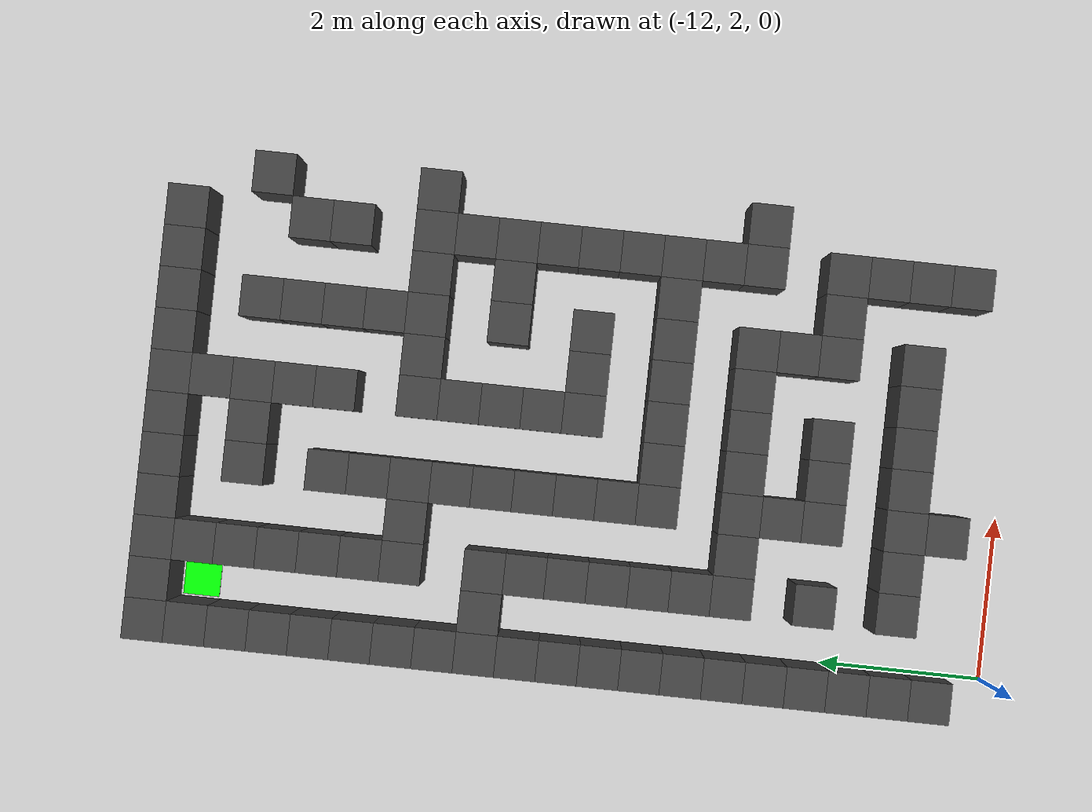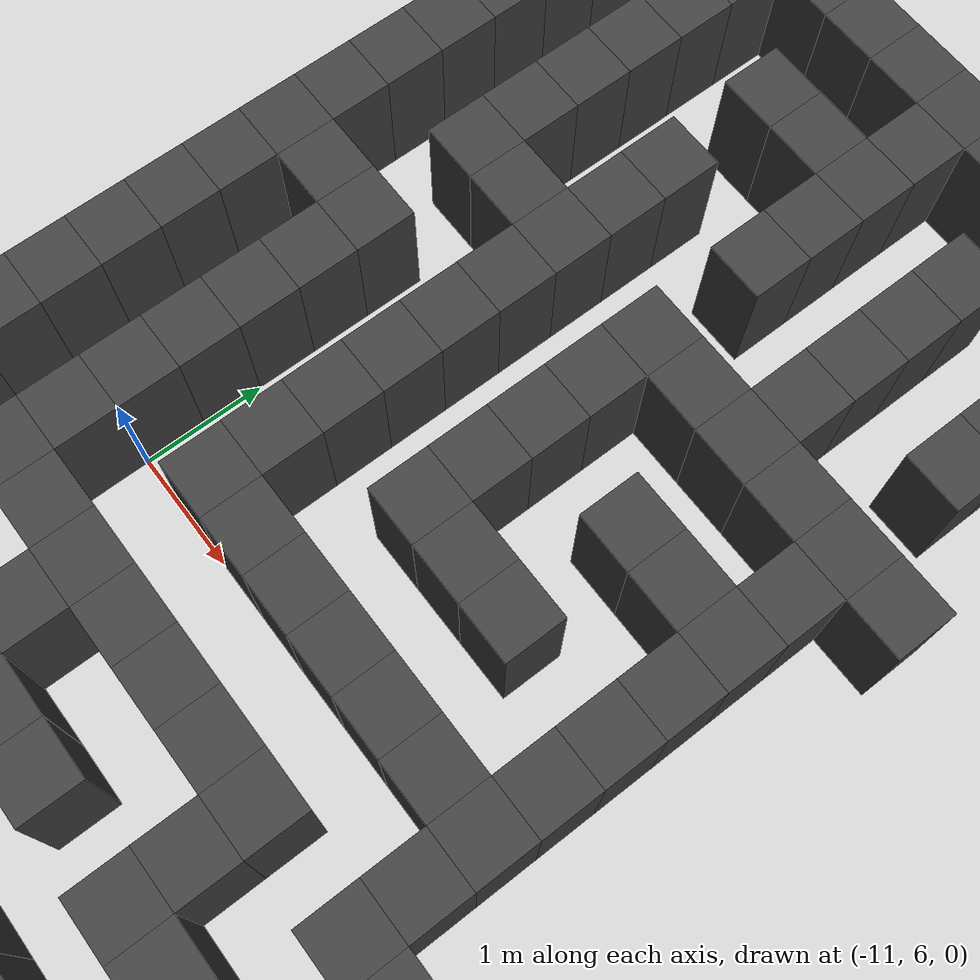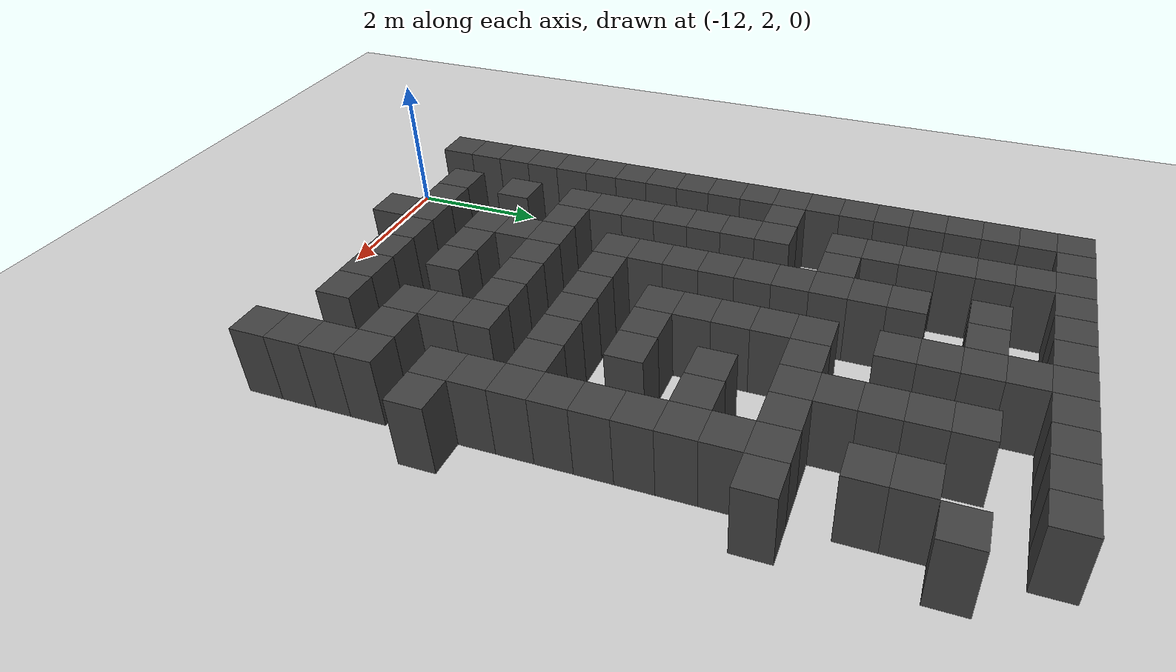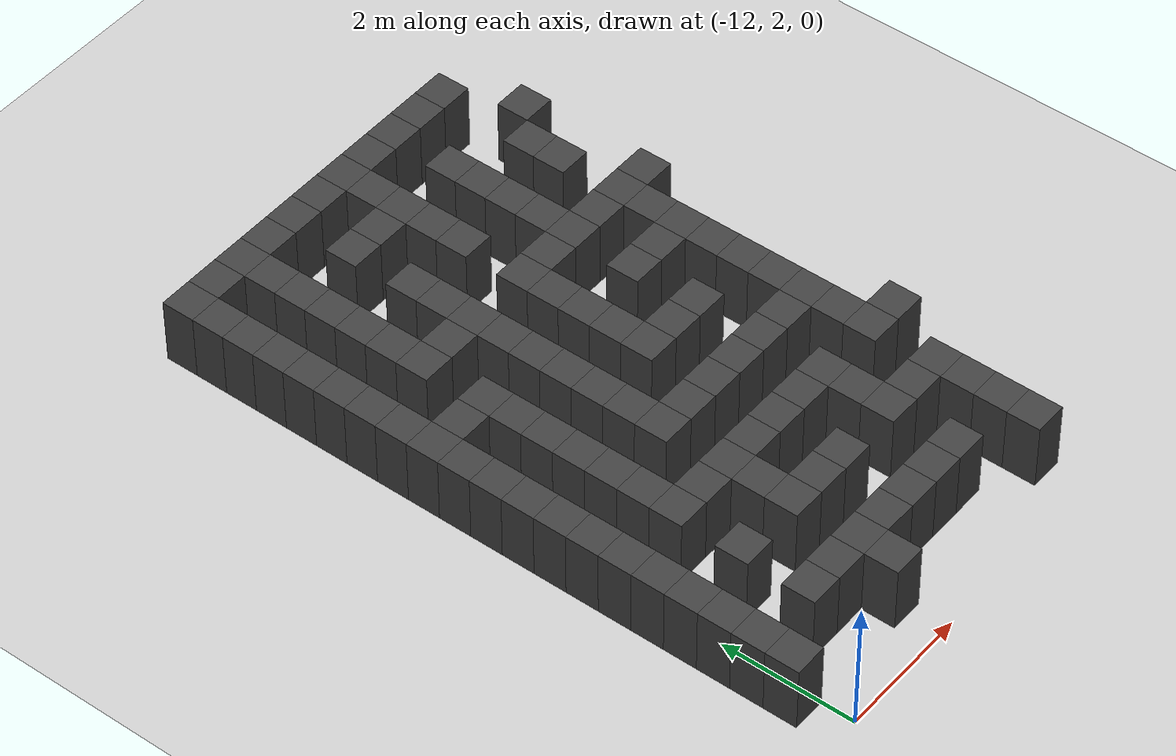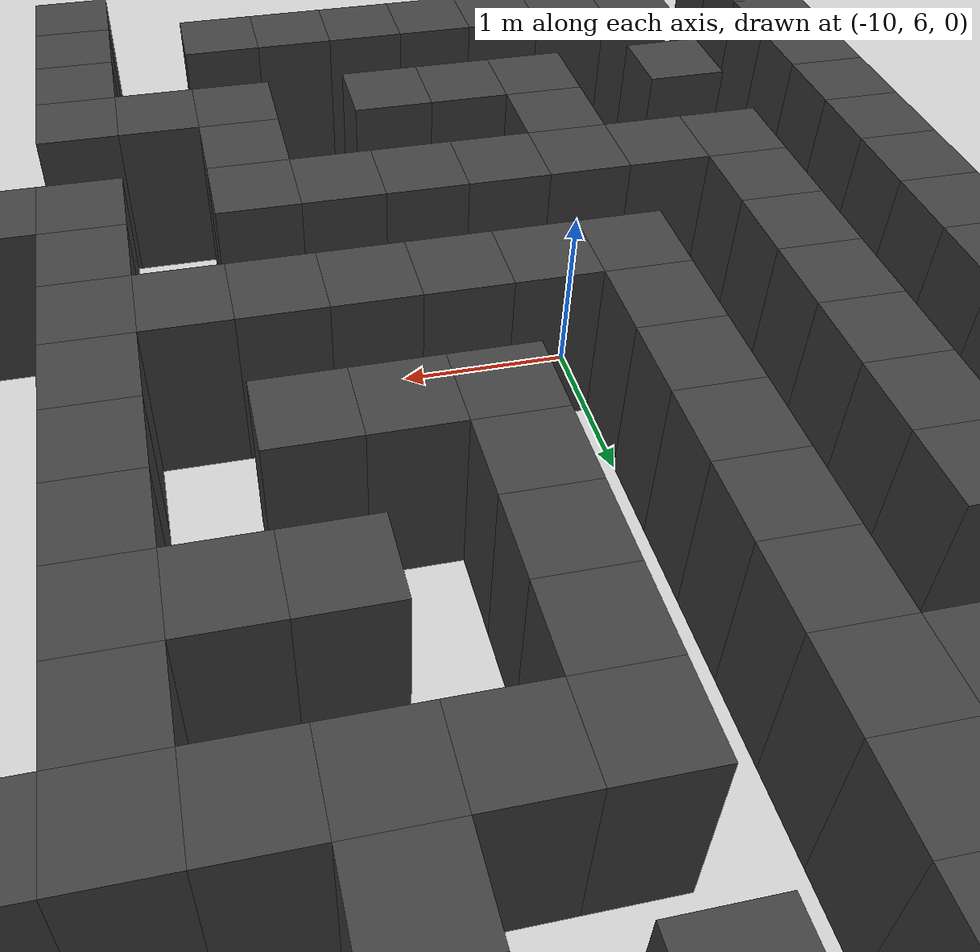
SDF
<sdf version="1.7">
 <world name="map_19815">
  <model name="ground_plane">
   <static>true</static>
   <link name="link">
    <collision name="collision">
     <geometry><plane><normal>0 0 1</normal><size>200 200</size></plane></geometry>
    </collision>
    <visual name="visual">
     <geometry><plane><normal>0 0 1</normal><size>200 200</size></plane></geometry>
     <material><ambient>0.8 0.8 0.8 1</ambient><diffuse>0.8 0.8 0.8 1</diffuse></material>
    </visual>
   </link>
  </model>
  <model name="maze_environment">
   <static>true</static>
   <link name="wall_0">
    <pose>-12.250 12.250 0.500 0 0 0</pose>
    <collision name="col"><geometry><box><size>0.5 0.5 1.0</size></box></geometry></collision>
    <visual name="vis">
     <geometry><box><size>0.5 0.5 1.0</size></box></geometry>
     <material><ambient>0.15 0.15 0.15 1</ambient><diffuse>0.25 0.25 0.25 1</diffuse></material>
    </visual>
   </link>
   <link name="wall_1">
    <pose>-11.750 12.250 0.500 0 0 0</pose>
    <collision name="col"><geometry><box><size>0.5 0.5 1.0</size></box></geometry></collision>
    <visual name="vis">
     <geometry><box><size>0.5 0.5 1.0</size></box></geometry>
     <material><ambient>0.15 0.15 0.15 1</ambient><diffuse>0.25 0.25 0.25 1</diffuse></material>
    </visual>
   </link>
   <link name="wall_2">
    <pose>-11.250 12.250 0.500 0 0 0</pose>
    <collision name="col"><geometry><box><size>0.5 0.5 1.0</size></box></geometry></collision>
    <visual name="vis">
     <geometry><box><size>0.5 0.5 1.0</size></box></geometry>
     <material><ambient>0.15 0.15 0.15 1</ambient><diffuse>0.25 0.25 0.25 1</diffuse></material>
    </visual>
   </link>
   <link name="wall_3">
    <pose>-10.750 12.250 0.500 0 0 0</pose>
    <collision name="col"><geometry><box><size>0.5 0.5 1.0</size></box></geometry></collision>
    <visual name="vis">
     <geometry><box><size>0.5 0.5 1.0</size></box></geometry>
     <material><ambient>0.15 0.15 0.15 1</ambient><diffuse>0.25 0.25 0.25 1</diffuse></material>
    </visual>
   </link>
   <link name="wall_4">
    <pose>-10.250 12.250 0.500 0 0 0</pose>
    <collision name="col"><geometry><box><size>0.5 0.5 1.0</size></box></geometry></collision>
    <visual name="vis">
     <geometry><box><size>0.5 0.5 1.0</size></box></geometry>
     <material><ambient>0.15 0.15 0.15 1</ambient><diffuse>0.25 0.25 0.25 1</diffuse></material>
    </visual>
   </link>
   <link name="wall_5">
    <pose>-9.750 12.250 0.500 0 0 0</pose>
    <collision name="col"><geometry><box><size>0.5 0.5 1.0</size></box></geometry></collision>
    <visual name="vis">
     <geometry><box><size>0.5 0.5 1.0</size></box></geometry>
     <material><ambient>0.15 0.15 0.15 1</ambient><diffuse>0.25 0.25 0.25 1</diffuse></material>
    </visual>
   </link>
   <link name="wall_6">
    <pose>-9.250 12.250 0.500 0 0 0</pose>
    <collision name="col"><geometry><box><size>0.5 0.5 1.0</size></box></geometry></collision>
    <visual name="vis">
     <geometry><box><size>0.5 0.5 1.0</size></box></geometry>
     <material><ambient>0.15 0.15 0.15 1</ambient><diffuse>0.25 0.25 0.25 1</diffuse></material>
    </visual>
   </link>
   <link name="wall_7">
    <pose>-8.750 12.250 0.500 0 0 0</pose>
    <collision name="col"><geometry><box><size>0.5 0.5 1.0</size></box></geometry></collision>
    <visual name="vis">
     <geometry><box><size>0.5 0.5 1.0</size></box></geometry>
     <material><ambient>0.15 0.15 0.15 1</ambient><diffuse>0.25 0.25 0.25 1</diffuse></material>
    </visual>
   </link>
   <link name="wall_8">
    <pose>-8.250 12.250 0.500 0 0 0</pose>
    <collision name="col"><geometry><box><size>0.5 0.5 1.0</size></box></geometry></collision>
    <visual name="vis">
     <geometry><box><size>0.5 0.5 1.0</size></box></geometry>
     <material><ambient>0.15 0.15 0.15 1</ambient><diffuse>0.25 0.25 0.25 1</diffuse></material>
    </visual>
   </link>
   <link name="wall_9">
    <pose>-7.750 12.250 0.500 0 0 0</pose>
    <collision name="col"><geometry><box><size>0.5 0.5 1.0</size></box></geometry></collision>
    <visual name="vis">
     <geometry><box><size>0.5 0.5 1.0</size></box></geometry>
     <material><ambient>0.15 0.15 0.15 1</ambient><diffuse>0.25 0.25 0.25 1</diffuse></material>
    </visual>
   </link>
   <link name="wall_10">
    <pose>-7.250 12.250 0.500 0 0 0</pose>
    <collision name="col"><geometry><box><size>0.5 0.5 1.0</size></box></geometry></collision>
    <visual name="vis">
     <geometry><box><size>0.5 0.5 1.0</size></box></geometry>
     <material><ambient>0.15 0.15 0.15 1</ambient><diffuse>0.25 0.25 0.25 1</diffuse></material>
    </visual>
   </link>
   <link name="wall_50">
    <pose>-12.250 11.750 0.500 0 0 0</pose>
    <collision name="col"><geometry><box><size>0.5 0.5 1.0</size></box></geometry></collision>
    <visual name="vis">
     <geometry><box><size>0.5 0.5 1.0</size></box></geometry>
     <material><ambient>0.15 0.15 0.15 1</ambient><diffuse>0.25 0.25 0.25 1</diffuse></material>
    </visual>
   </link>
   <link name="wall_51">
    <pose>-11.250 11.750 0.500 0 0 0</pose>
    <collision name="col"><geometry><box><size>0.5 0.5 1.0</size></box></geometry></collision>
    <visual name="vis">
     <geometry><box><size>0.5 0.5 1.0</size></box></geometry>
     <material><ambient>0.15 0.15 0.15 1</ambient><diffuse>0.25 0.25 0.25 1</diffuse></material>
    </visual>
   </link>
   <link name="wall_52">
    <pose>-9.250 11.750 0.500 0 0 0</pose>
    <collision name="col"><geometry><box><size>0.5 0.5 1.0</size></box></geometry></collision>
    <visual name="vis">
     <geometry><box><size>0.5 0.5 1.0</size></box></geometry>
     <material><ambient>0.15 0.15 0.15 1</ambient><diffuse>0.25 0.25 0.25 1</diffuse></material>
    </visual>
   </link>
   <link name="wall_60">
    <pose>-12.250 11.250 0.500 0 0 0</pose>
    <collision name="col"><geometry><box><size>0.5 0.5 1.0</size></box></geometry></collision>
    <visual name="vis">
     <geometry><box><size>0.5 0.5 1.0</size></box></geometry>
     <material><ambient>0.15 0.15 0.15 1</ambient><diffuse>0.25 0.25 0.25 1</diffuse></material>
    </visual>
   </link>
   <link name="wall_61">
    <pose>-11.250 11.250 0.500 0 0 0</pose>
    <collision name="col"><geometry><box><size>0.5 0.5 1.0</size></box></geometry></collision>
    <visual name="vis">
     <geometry><box><size>0.5 0.5 1.0</size></box></geometry>
     <material><ambient>0.15 0.15 0.15 1</ambient><diffuse>0.25 0.25 0.25 1</diffuse></material>
    </visual>
   </link>
   <link name="wall_62">
    <pose>-10.250 11.250 0.500 0 0 0</pose>
    <collision name="col"><geometry><box><size>0.5 0.5 1.0</size></box></geometry></collision>
    <visual name="vis">
     <geometry><box><size>0.5 0.5 1.0</size></box></geometry>
     <material><ambient>0.15 0.15 0.15 1</ambient><diffuse>0.25 0.25 0.25 1</diffuse></material>
    </visual>
   </link>
   <link name="wall_63">
    <pose>-9.750 11.250 0.500 0 0 0</pose>
    <collision name="col"><geometry><box><size>0.5 0.5 1.0</size></box></geometry></collision>
    <visual name="vis">
     <geometry><box><size>0.5 0.5 1.0</size></box></geometry>
     <material><ambient>0.15 0.15 0.15 1</ambient><diffuse>0.25 0.25 0.25 1</diffuse></material>
    </visual>
   </link>
   <link name="wall_64">
    <pose>-9.250 11.250 0.500 0 0 0</pose>
    <collision name="col"><geometry><box><size>0.5 0.5 1.0</size></box></geometry></collision>
    <visual name="vis">
     <geometry><box><size>0.5 0.5 1.0</size></box></geometry>
     <material><ambient>0.15 0.15 0.15 1</ambient><diffuse>0.25 0.25 0.25 1</diffuse></material>
    </visual>
   </link>
   <link name="wall_65">
    <pose>-8.250 11.250 0.500 0 0 0</pose>
    <collision name="col"><geometry><box><size>0.5 0.5 1.0</size></box></geometry></collision>
    <visual name="vis">
     <geometry><box><size>0.5 0.5 1.0</size></box></geometry>
     <material><ambient>0.15 0.15 0.15 1</ambient><diffuse>0.25 0.25 0.25 1</diffuse></material>
    </visual>
   </link>
   <link name="wall_66">
    <pose>-6.750 11.250 0.500 0 0 0</pose>
    <collision name="col"><geometry><box><size>0.5 0.5 1.0</size></box></geometry></collision>
    <visual name="vis">
     <geometry><box><size>0.5 0.5 1.0</size></box></geometry>
     <material><ambient>0.15 0.15 0.15 1</ambient><diffuse>0.25 0.25 0.25 1</diffuse></material>
    </visual>
   </link>
   <link name="wall_94">
    <pose>-12.250 10.750 0.500 0 0 0</pose>
    <collision name="col"><geometry><box><size>0.5 0.5 1.0</size></box></geometry></collision>
    <visual name="vis">
     <geometry><box><size>0.5 0.5 1.0</size></box></geometry>
     <material><ambient>0.15 0.15 0.15 1</ambient><diffuse>0.25 0.25 0.25 1</diffuse></material>
    </visual>
   </link>
   <link name="wall_95">
    <pose>-11.250 10.750 0.500 0 0 0</pose>
    <collision name="col"><geometry><box><size>0.5 0.5 1.0</size></box></geometry></collision>
    <visual name="vis">
     <geometry><box><size>0.5 0.5 1.0</size></box></geometry>
     <material><ambient>0.15 0.15 0.15 1</ambient><diffuse>0.25 0.25 0.25 1</diffuse></material>
    </visual>
   </link>
   <link name="wall_96">
    <pose>-9.250 10.750 0.500 0 0 0</pose>
    <collision name="col"><geometry><box><size>0.5 0.5 1.0</size></box></geometry></collision>
    <visual name="vis">
     <geometry><box><size>0.5 0.5 1.0</size></box></geometry>
     <material><ambient>0.15 0.15 0.15 1</ambient><diffuse>0.25 0.25 0.25 1</diffuse></material>
    </visual>
   </link>
   <link name="wall_97">
    <pose>-8.250 10.750 0.500 0 0 0</pose>
    <collision name="col"><geometry><box><size>0.5 0.5 1.0</size></box></geometry></collision>
    <visual name="vis">
     <geometry><box><size>0.5 0.5 1.0</size></box></geometry>
     <material><ambient>0.15 0.15 0.15 1</ambient><diffuse>0.25 0.25 0.25 1</diffuse></material>
    </visual>
   </link>
   <link name="wall_98">
    <pose>-7.250 10.750 0.500 0 0 0</pose>
    <collision name="col"><geometry><box><size>0.5 0.5 1.0</size></box></geometry></collision>
    <visual name="vis">
     <geometry><box><size>0.5 0.5 1.0</size></box></geometry>
     <material><ambient>0.15 0.15 0.15 1</ambient><diffuse>0.25 0.25 0.25 1</diffuse></material>
    </visual>
   </link>
   <link name="wall_111">
    <pose>-12.250 10.250 0.500 0 0 0</pose>
    <collision name="col"><geometry><box><size>0.5 0.5 1.0</size></box></geometry></collision>
    <visual name="vis">
     <geometry><box><size>0.5 0.5 1.0</size></box></geometry>
     <material><ambient>0.15 0.15 0.15 1</ambient><diffuse>0.25 0.25 0.25 1</diffuse></material>
    </visual>
   </link>
   <link name="wall_112">
    <pose>-11.250 10.250 0.500 0 0 0</pose>
    <collision name="col"><geometry><box><size>0.5 0.5 1.0</size></box></geometry></collision>
    <visual name="vis">
     <geometry><box><size>0.5 0.5 1.0</size></box></geometry>
     <material><ambient>0.15 0.15 0.15 1</ambient><diffuse>0.25 0.25 0.25 1</diffuse></material>
    </visual>
   </link>
   <link name="wall_113">
    <pose>-10.250 10.250 0.500 0 0 0</pose>
    <collision name="col"><geometry><box><size>0.5 0.5 1.0</size></box></geometry></collision>
    <visual name="vis">
     <geometry><box><size>0.5 0.5 1.0</size></box></geometry>
     <material><ambient>0.15 0.15 0.15 1</ambient><diffuse>0.25 0.25 0.25 1</diffuse></material>
    </visual>
   </link>
   <link name="wall_114">
    <pose>-9.250 10.250 0.500 0 0 0</pose>
    <collision name="col"><geometry><box><size>0.5 0.5 1.0</size></box></geometry></collision>
    <visual name="vis">
     <geometry><box><size>0.5 0.5 1.0</size></box></geometry>
     <material><ambient>0.15 0.15 0.15 1</ambient><diffuse>0.25 0.25 0.25 1</diffuse></material>
    </visual>
   </link>
   <link name="wall_115">
    <pose>-8.250 10.250 0.500 0 0 0</pose>
    <collision name="col"><geometry><box><size>0.5 0.5 1.0</size></box></geometry></collision>
    <visual name="vis">
     <geometry><box><size>0.5 0.5 1.0</size></box></geometry>
     <material><ambient>0.15 0.15 0.15 1</ambient><diffuse>0.25 0.25 0.25 1</diffuse></material>
    </visual>
   </link>
   <link name="wall_116">
    <pose>-7.250 10.250 0.500 0 0 0</pose>
    <collision name="col"><geometry><box><size>0.5 0.5 1.0</size></box></geometry></collision>
    <visual name="vis">
     <geometry><box><size>0.5 0.5 1.0</size></box></geometry>
     <material><ambient>0.15 0.15 0.15 1</ambient><diffuse>0.25 0.25 0.25 1</diffuse></material>
    </visual>
   </link>
   <link name="wall_146">
    <pose>-12.250 9.750 0.500 0 0 0</pose>
    <collision name="col"><geometry><box><size>0.5 0.5 1.0</size></box></geometry></collision>
    <visual name="vis">
     <geometry><box><size>0.5 0.5 1.0</size></box></geometry>
     <material><ambient>0.15 0.15 0.15 1</ambient><diffuse>0.25 0.25 0.25 1</diffuse></material>
    </visual>
   </link>
   <link name="wall_147">
    <pose>-11.250 9.750 0.500 0 0 0</pose>
    <collision name="col"><geometry><box><size>0.5 0.5 1.0</size></box></geometry></collision>
    <visual name="vis">
     <geometry><box><size>0.5 0.5 1.0</size></box></geometry>
     <material><ambient>0.15 0.15 0.15 1</ambient><diffuse>0.25 0.25 0.25 1</diffuse></material>
    </visual>
   </link>
   <link name="wall_148">
    <pose>-10.250 9.750 0.500 0 0 0</pose>
    <collision name="col"><geometry><box><size>0.5 0.5 1.0</size></box></geometry></collision>
    <visual name="vis">
     <geometry><box><size>0.5 0.5 1.0</size></box></geometry>
     <material><ambient>0.15 0.15 0.15 1</ambient><diffuse>0.25 0.25 0.25 1</diffuse></material>
    </visual>
   </link>
   <link name="wall_149">
    <pose>-8.250 9.750 0.500 0 0 0</pose>
    <collision name="col"><geometry><box><size>0.5 0.5 1.0</size></box></geometry></collision>
    <visual name="vis">
     <geometry><box><size>0.5 0.5 1.0</size></box></geometry>
     <material><ambient>0.15 0.15 0.15 1</ambient><diffuse>0.25 0.25 0.25 1</diffuse></material>
    </visual>
   </link>
   <link name="wall_161">
    <pose>-12.250 9.250 0.500 0 0 0</pose>
    <collision name="col"><geometry><box><size>0.5 0.5 1.0</size></box></geometry></collision>
    <visual name="vis">
     <geometry><box><size>0.5 0.5 1.0</size></box></geometry>
     <material><ambient>0.15 0.15 0.15 1</ambient><diffuse>0.25 0.25 0.25 1</diffuse></material>
    </visual>
   </link>
   <link name="wall_162">
    <pose>-11.250 9.250 0.500 0 0 0</pose>
    <collision name="col"><geometry><box><size>0.5 0.5 1.0</size></box></geometry></collision>
    <visual name="vis">
     <geometry><box><size>0.5 0.5 1.0</size></box></geometry>
     <material><ambient>0.15 0.15 0.15 1</ambient><diffuse>0.25 0.25 0.25 1</diffuse></material>
    </visual>
   </link>
   <link name="wall_163">
    <pose>-10.750 9.250 0.500 0 0 0</pose>
    <collision name="col"><geometry><box><size>0.5 0.5 1.0</size></box></geometry></collision>
    <visual name="vis">
     <geometry><box><size>0.5 0.5 1.0</size></box></geometry>
     <material><ambient>0.15 0.15 0.15 1</ambient><diffuse>0.25 0.25 0.25 1</diffuse></material>
    </visual>
   </link>
   <link name="wall_164">
    <pose>-10.250 9.250 0.500 0 0 0</pose>
    <collision name="col"><geometry><box><size>0.5 0.5 1.0</size></box></geometry></collision>
    <visual name="vis">
     <geometry><box><size>0.5 0.5 1.0</size></box></geometry>
     <material><ambient>0.15 0.15 0.15 1</ambient><diffuse>0.25 0.25 0.25 1</diffuse></material>
    </visual>
   </link>
   <link name="wall_165">
    <pose>-9.250 9.250 0.500 0 0 0</pose>
    <collision name="col"><geometry><box><size>0.5 0.5 1.0</size></box></geometry></collision>
    <visual name="vis">
     <geometry><box><size>0.5 0.5 1.0</size></box></geometry>
     <material><ambient>0.15 0.15 0.15 1</ambient><diffuse>0.25 0.25 0.25 1</diffuse></material>
    </visual>
   </link>
   <link name="wall_166">
    <pose>-8.750 9.250 0.500 0 0 0</pose>
    <collision name="col"><geometry><box><size>0.5 0.5 1.0</size></box></geometry></collision>
    <visual name="vis">
     <geometry><box><size>0.5 0.5 1.0</size></box></geometry>
     <material><ambient>0.15 0.15 0.15 1</ambient><diffuse>0.25 0.25 0.25 1</diffuse></material>
    </visual>
   </link>
   <link name="wall_167">
    <pose>-8.250 9.250 0.500 0 0 0</pose>
    <collision name="col"><geometry><box><size>0.5 0.5 1.0</size></box></geometry></collision>
    <visual name="vis">
     <geometry><box><size>0.5 0.5 1.0</size></box></geometry>
     <material><ambient>0.15 0.15 0.15 1</ambient><diffuse>0.25 0.25 0.25 1</diffuse></material>
    </visual>
   </link>
   <link name="wall_168">
    <pose>-7.750 9.250 0.500 0 0 0</pose>
    <collision name="col"><geometry><box><size>0.5 0.5 1.0</size></box></geometry></collision>
    <visual name="vis">
     <geometry><box><size>0.5 0.5 1.0</size></box></geometry>
     <material><ambient>0.15 0.15 0.15 1</ambient><diffuse>0.25 0.25 0.25 1</diffuse></material>
    </visual>
   </link>
   <link name="wall_169">
    <pose>-7.250 9.250 0.500 0 0 0</pose>
    <collision name="col"><geometry><box><size>0.5 0.5 1.0</size></box></geometry></collision>
    <visual name="vis">
     <geometry><box><size>0.5 0.5 1.0</size></box></geometry>
     <material><ambient>0.15 0.15 0.15 1</ambient><diffuse>0.25 0.25 0.25 1</diffuse></material>
    </visual>
   </link>
   <link name="wall_170">
    <pose>-6.750 9.250 0.500 0 0 0</pose>
    <collision name="col"><geometry><box><size>0.5 0.5 1.0</size></box></geometry></collision>
    <visual name="vis">
     <geometry><box><size>0.5 0.5 1.0</size></box></geometry>
     <material><ambient>0.15 0.15 0.15 1</ambient><diffuse>0.25 0.25 0.25 1</diffuse></material>
    </visual>
   </link>
   <link name="wall_200">
    <pose>-12.250 8.750 0.500 0 0 0</pose>
    <collision name="col"><geometry><box><size>0.5 0.5 1.0</size></box></geometry></collision>
    <visual name="vis">
     <geometry><box><size>0.5 0.5 1.0</size></box></geometry>
     <material><ambient>0.15 0.15 0.15 1</ambient><diffuse>0.25 0.25 0.25 1</diffuse></material>
    </visual>
   </link>
   <link name="wall_201">
    <pose>-10.250 8.750 0.500 0 0 0</pose>
    <collision name="col"><geometry><box><size>0.5 0.5 1.0</size></box></geometry></collision>
    <visual name="vis">
     <geometry><box><size>0.5 0.5 1.0</size></box></geometry>
     <material><ambient>0.15 0.15 0.15 1</ambient><diffuse>0.25 0.25 0.25 1</diffuse></material>
    </visual>
   </link>
   <link name="wall_202">
    <pose>-9.250 8.750 0.500 0 0 0</pose>
    <collision name="col"><geometry><box><size>0.5 0.5 1.0</size></box></geometry></collision>
    <visual name="vis">
     <geometry><box><size>0.5 0.5 1.0</size></box></geometry>
     <material><ambient>0.15 0.15 0.15 1</ambient><diffuse>0.25 0.25 0.25 1</diffuse></material>
    </visual>
   </link>
   <link name="wall_203">
    <pose>-7.250 8.750 0.500 0 0 0</pose>
    <collision name="col"><geometry><box><size>0.5 0.5 1.0</size></box></geometry></collision>
    <visual name="vis">
     <geometry><box><size>0.5 0.5 1.0</size></box></geometry>
     <material><ambient>0.15 0.15 0.15 1</ambient><diffuse>0.25 0.25 0.25 1</diffuse></material>
    </visual>
   </link>
   <link name="wall_217">
    <pose>-12.250 8.250 0.500 0 0 0</pose>
    <collision name="col"><geometry><box><size>0.5 0.5 1.0</size></box></geometry></collision>
    <visual name="vis">
     <geometry><box><size>0.5 0.5 1.0</size></box></geometry>
     <material><ambient>0.15 0.15 0.15 1</ambient><diffuse>0.25 0.25 0.25 1</diffuse></material>
    </visual>
   </link>
   <link name="wall_218">
    <pose>-11.750 8.250 0.500 0 0 0</pose>
    <collision name="col"><geometry><box><size>0.5 0.5 1.0</size></box></geometry></collision>
    <visual name="vis">
     <geometry><box><size>0.5 0.5 1.0</size></box></geometry>
     <material><ambient>0.15 0.15 0.15 1</ambient><diffuse>0.25 0.25 0.25 1</diffuse></material>
    </visual>
   </link>
   <link name="wall_219">
    <pose>-11.250 8.250 0.500 0 0 0</pose>
    <collision name="col"><geometry><box><size>0.5 0.5 1.0</size></box></geometry></collision>
    <visual name="vis">
     <geometry><box><size>0.5 0.5 1.0</size></box></geometry>
     <material><ambient>0.15 0.15 0.15 1</ambient><diffuse>0.25 0.25 0.25 1</diffuse></material>
    </visual>
   </link>
   <link name="wall_220">
    <pose>-10.250 8.250 0.500 0 0 0</pose>
    <collision name="col"><geometry><box><size>0.5 0.5 1.0</size></box></geometry></collision>
    <visual name="vis">
     <geometry><box><size>0.5 0.5 1.0</size></box></geometry>
     <material><ambient>0.15 0.15 0.15 1</ambient><diffuse>0.25 0.25 0.25 1</diffuse></material>
    </visual>
   </link>
   <link name="wall_221">
    <pose>-9.250 8.250 0.500 0 0 0</pose>
    <collision name="col"><geometry><box><size>0.5 0.5 1.0</size></box></geometry></collision>
    <visual name="vis">
     <geometry><box><size>0.5 0.5 1.0</size></box></geometry>
     <material><ambient>0.15 0.15 0.15 1</ambient><diffuse>0.25 0.25 0.25 1</diffuse></material>
    </visual>
   </link>
   <link name="wall_222">
    <pose>-8.250 8.250 0.500 0 0 0</pose>
    <collision name="col"><geometry><box><size>0.5 0.5 1.0</size></box></geometry></collision>
    <visual name="vis">
     <geometry><box><size>0.5 0.5 1.0</size></box></geometry>
     <material><ambient>0.15 0.15 0.15 1</ambient><diffuse>0.25 0.25 0.25 1</diffuse></material>
    </visual>
   </link>
   <link name="wall_223">
    <pose>-7.750 8.250 0.500 0 0 0</pose>
    <collision name="col"><geometry><box><size>0.5 0.5 1.0</size></box></geometry></collision>
    <visual name="vis">
     <geometry><box><size>0.5 0.5 1.0</size></box></geometry>
     <material><ambient>0.15 0.15 0.15 1</ambient><diffuse>0.25 0.25 0.25 1</diffuse></material>
    </visual>
   </link>
   <link name="wall_224">
    <pose>-7.250 8.250 0.500 0 0 0</pose>
    <collision name="col"><geometry><box><size>0.5 0.5 1.0</size></box></geometry></collision>
    <visual name="vis">
     <geometry><box><size>0.5 0.5 1.0</size></box></geometry>
     <material><ambient>0.15 0.15 0.15 1</ambient><diffuse>0.25 0.25 0.25 1</diffuse></material>
    </visual>
   </link>
   <link name="wall_251">
    <pose>-12.250 7.750 0.500 0 0 0</pose>
    <collision name="col"><geometry><box><size>0.5 0.5 1.0</size></box></geometry></collision>
    <visual name="vis">
     <geometry><box><size>0.5 0.5 1.0</size></box></geometry>
     <material><ambient>0.15 0.15 0.15 1</ambient><diffuse>0.25 0.25 0.25 1</diffuse></material>
    </visual>
   </link>
   <link name="wall_252">
    <pose>-11.250 7.750 0.500 0 0 0</pose>
    <collision name="col"><geometry><box><size>0.5 0.5 1.0</size></box></geometry></collision>
    <visual name="vis">
     <geometry><box><size>0.5 0.5 1.0</size></box></geometry>
     <material><ambient>0.15 0.15 0.15 1</ambient><diffuse>0.25 0.25 0.25 1</diffuse></material>
    </visual>
   </link>
   <link name="wall_253">
    <pose>-10.250 7.750 0.500 0 0 0</pose>
    <collision name="col"><geometry><box><size>0.5 0.5 1.0</size></box></geometry></collision>
    <visual name="vis">
     <geometry><box><size>0.5 0.5 1.0</size></box></geometry>
     <material><ambient>0.15 0.15 0.15 1</ambient><diffuse>0.25 0.25 0.25 1</diffuse></material>
    </visual>
   </link>
   <link name="wall_254">
    <pose>-9.250 7.750 0.500 0 0 0</pose>
    <collision name="col"><geometry><box><size>0.5 0.5 1.0</size></box></geometry></collision>
    <visual name="vis">
     <geometry><box><size>0.5 0.5 1.0</size></box></geometry>
     <material><ambient>0.15 0.15 0.15 1</ambient><diffuse>0.25 0.25 0.25 1</diffuse></material>
    </visual>
   </link>
   <link name="wall_255">
    <pose>-7.250 7.750 0.500 0 0 0</pose>
    <collision name="col"><geometry><box><size>0.5 0.5 1.0</size></box></geometry></collision>
    <visual name="vis">
     <geometry><box><size>0.5 0.5 1.0</size></box></geometry>
     <material><ambient>0.15 0.15 0.15 1</ambient><diffuse>0.25 0.25 0.25 1</diffuse></material>
    </visual>
   </link>
   <link name="wall_266">
    <pose>-12.250 7.250 0.500 0 0 0</pose>
    <collision name="col"><geometry><box><size>0.5 0.5 1.0</size></box></geometry></collision>
    <visual name="vis">
     <geometry><box><size>0.5 0.5 1.0</size></box></geometry>
     <material><ambient>0.15 0.15 0.15 1</ambient><diffuse>0.25 0.25 0.25 1</diffuse></material>
    </visual>
   </link>
   <link name="wall_267">
    <pose>-11.250 7.250 0.500 0 0 0</pose>
    <collision name="col"><geometry><box><size>0.5 0.5 1.0</size></box></geometry></collision>
    <visual name="vis">
     <geometry><box><size>0.5 0.5 1.0</size></box></geometry>
     <material><ambient>0.15 0.15 0.15 1</ambient><diffuse>0.25 0.25 0.25 1</diffuse></material>
    </visual>
   </link>
   <link name="wall_268">
    <pose>-10.250 7.250 0.500 0 0 0</pose>
    <collision name="col"><geometry><box><size>0.5 0.5 1.0</size></box></geometry></collision>
    <visual name="vis">
     <geometry><box><size>0.5 0.5 1.0</size></box></geometry>
     <material><ambient>0.15 0.15 0.15 1</ambient><diffuse>0.25 0.25 0.25 1</diffuse></material>
    </visual>
   </link>
   <link name="wall_269">
    <pose>-9.250 7.250 0.500 0 0 0</pose>
    <collision name="col"><geometry><box><size>0.5 0.5 1.0</size></box></geometry></collision>
    <visual name="vis">
     <geometry><box><size>0.5 0.5 1.0</size></box></geometry>
     <material><ambient>0.15 0.15 0.15 1</ambient><diffuse>0.25 0.25 0.25 1</diffuse></material>
    </visual>
   </link>
   <link name="wall_270">
    <pose>-8.750 7.250 0.500 0 0 0</pose>
    <collision name="col"><geometry><box><size>0.5 0.5 1.0</size></box></geometry></collision>
    <visual name="vis">
     <geometry><box><size>0.5 0.5 1.0</size></box></geometry>
     <material><ambient>0.15 0.15 0.15 1</ambient><diffuse>0.25 0.25 0.25 1</diffuse></material>
    </visual>
   </link>
   <link name="wall_271">
    <pose>-8.250 7.250 0.500 0 0 0</pose>
    <collision name="col"><geometry><box><size>0.5 0.5 1.0</size></box></geometry></collision>
    <visual name="vis">
     <geometry><box><size>0.5 0.5 1.0</size></box></geometry>
     <material><ambient>0.15 0.15 0.15 1</ambient><diffuse>0.25 0.25 0.25 1</diffuse></material>
    </visual>
   </link>
   <link name="wall_272">
    <pose>-7.250 7.250 0.500 0 0 0</pose>
    <collision name="col"><geometry><box><size>0.5 0.5 1.0</size></box></geometry></collision>
    <visual name="vis">
     <geometry><box><size>0.5 0.5 1.0</size></box></geometry>
     <material><ambient>0.15 0.15 0.15 1</ambient><diffuse>0.25 0.25 0.25 1</diffuse></material>
    </visual>
   </link>
   <link name="wall_301">
    <pose>-12.250 6.750 0.500 0 0 0</pose>
    <collision name="col"><geometry><box><size>0.5 0.5 1.0</size></box></geometry></collision>
    <visual name="vis">
     <geometry><box><size>0.5 0.5 1.0</size></box></geometry>
     <material><ambient>0.15 0.15 0.15 1</ambient><diffuse>0.25 0.25 0.25 1</diffuse></material>
    </visual>
   </link>
   <link name="wall_302">
    <pose>-11.250 6.750 0.500 0 0 0</pose>
    <collision name="col"><geometry><box><size>0.5 0.5 1.0</size></box></geometry></collision>
    <visual name="vis">
     <geometry><box><size>0.5 0.5 1.0</size></box></geometry>
     <material><ambient>0.15 0.15 0.15 1</ambient><diffuse>0.25 0.25 0.25 1</diffuse></material>
    </visual>
   </link>
   <link name="wall_303">
    <pose>-10.250 6.750 0.500 0 0 0</pose>
    <collision name="col"><geometry><box><size>0.5 0.5 1.0</size></box></geometry></collision>
    <visual name="vis">
     <geometry><box><size>0.5 0.5 1.0</size></box></geometry>
     <material><ambient>0.15 0.15 0.15 1</ambient><diffuse>0.25 0.25 0.25 1</diffuse></material>
    </visual>
   </link>
   <link name="wall_304">
    <pose>-7.250 6.750 0.500 0 0 0</pose>
    <collision name="col"><geometry><box><size>0.5 0.5 1.0</size></box></geometry></collision>
    <visual name="vis">
     <geometry><box><size>0.5 0.5 1.0</size></box></geometry>
     <material><ambient>0.15 0.15 0.15 1</ambient><diffuse>0.25 0.25 0.25 1</diffuse></material>
    </visual>
   </link>
   <link name="wall_318">
    <pose>-12.250 6.250 0.500 0 0 0</pose>
    <collision name="col"><geometry><box><size>0.5 0.5 1.0</size></box></geometry></collision>
    <visual name="vis">
     <geometry><box><size>0.5 0.5 1.0</size></box></geometry>
     <material><ambient>0.15 0.15 0.15 1</ambient><diffuse>0.25 0.25 0.25 1</diffuse></material>
    </visual>
   </link>
   <link name="wall_319">
    <pose>-11.250 6.250 0.500 0 0 0</pose>
    <collision name="col"><geometry><box><size>0.5 0.5 1.0</size></box></geometry></collision>
    <visual name="vis">
     <geometry><box><size>0.5 0.5 1.0</size></box></geometry>
     <material><ambient>0.15 0.15 0.15 1</ambient><diffuse>0.25 0.25 0.25 1</diffuse></material>
    </visual>
   </link>
   <link name="wall_320">
    <pose>-10.250 6.250 0.500 0 0 0</pose>
    <collision name="col"><geometry><box><size>0.5 0.5 1.0</size></box></geometry></collision>
    <visual name="vis">
     <geometry><box><size>0.5 0.5 1.0</size></box></geometry>
     <material><ambient>0.15 0.15 0.15 1</ambient><diffuse>0.25 0.25 0.25 1</diffuse></material>
    </visual>
   </link>
   <link name="wall_321">
    <pose>-9.750 6.250 0.500 0 0 0</pose>
    <collision name="col"><geometry><box><size>0.5 0.5 1.0</size></box></geometry></collision>
    <visual name="vis">
     <geometry><box><size>0.5 0.5 1.0</size></box></geometry>
     <material><ambient>0.15 0.15 0.15 1</ambient><diffuse>0.25 0.25 0.25 1</diffuse></material>
    </visual>
   </link>
   <link name="wall_322">
    <pose>-9.250 6.250 0.500 0 0 0</pose>
    <collision name="col"><geometry><box><size>0.5 0.5 1.0</size></box></geometry></collision>
    <visual name="vis">
     <geometry><box><size>0.5 0.5 1.0</size></box></geometry>
     <material><ambient>0.15 0.15 0.15 1</ambient><diffuse>0.25 0.25 0.25 1</diffuse></material>
    </visual>
   </link>
   <link name="wall_323">
    <pose>-8.750 6.250 0.500 0 0 0</pose>
    <collision name="col"><geometry><box><size>0.5 0.5 1.0</size></box></geometry></collision>
    <visual name="vis">
     <geometry><box><size>0.5 0.5 1.0</size></box></geometry>
     <material><ambient>0.15 0.15 0.15 1</ambient><diffuse>0.25 0.25 0.25 1</diffuse></material>
    </visual>
   </link>
   <link name="wall_324">
    <pose>-8.250 6.250 0.500 0 0 0</pose>
    <collision name="col"><geometry><box><size>0.5 0.5 1.0</size></box></geometry></collision>
    <visual name="vis">
     <geometry><box><size>0.5 0.5 1.0</size></box></geometry>
     <material><ambient>0.15 0.15 0.15 1</ambient><diffuse>0.25 0.25 0.25 1</diffuse></material>
    </visual>
   </link>
   <link name="wall_325">
    <pose>-7.750 6.250 0.500 0 0 0</pose>
    <collision name="col"><geometry><box><size>0.5 0.5 1.0</size></box></geometry></collision>
    <visual name="vis">
     <geometry><box><size>0.5 0.5 1.0</size></box></geometry>
     <material><ambient>0.15 0.15 0.15 1</ambient><diffuse>0.25 0.25 0.25 1</diffuse></material>
    </visual>
   </link>
   <link name="wall_326">
    <pose>-7.250 6.250 0.500 0 0 0</pose>
    <collision name="col"><geometry><box><size>0.5 0.5 1.0</size></box></geometry></collision>
    <visual name="vis">
     <geometry><box><size>0.5 0.5 1.0</size></box></geometry>
     <material><ambient>0.15 0.15 0.15 1</ambient><diffuse>0.25 0.25 0.25 1</diffuse></material>
    </visual>
   </link>
   <link name="wall_355">
    <pose>-12.250 5.750 0.500 0 0 0</pose>
    <collision name="col"><geometry><box><size>0.5 0.5 1.0</size></box></geometry></collision>
    <visual name="vis">
     <geometry><box><size>0.5 0.5 1.0</size></box></geometry>
     <material><ambient>0.15 0.15 0.15 1</ambient><diffuse>0.25 0.25 0.25 1</diffuse></material>
    </visual>
   </link>
   <link name="wall_356">
    <pose>-11.250 5.750 0.500 0 0 0</pose>
    <collision name="col"><geometry><box><size>0.5 0.5 1.0</size></box></geometry></collision>
    <visual name="vis">
     <geometry><box><size>0.5 0.5 1.0</size></box></geometry>
     <material><ambient>0.15 0.15 0.15 1</ambient><diffuse>0.25 0.25 0.25 1</diffuse></material>
    </visual>
   </link>
   <link name="wall_357">
    <pose>-7.250 5.750 0.500 0 0 0</pose>
    <collision name="col"><geometry><box><size>0.5 0.5 1.0</size></box></geometry></collision>
    <visual name="vis">
     <geometry><box><size>0.5 0.5 1.0</size></box></geometry>
     <material><ambient>0.15 0.15 0.15 1</ambient><diffuse>0.25 0.25 0.25 1</diffuse></material>
    </visual>
   </link>
   <link name="wall_370">
    <pose>-12.250 5.250 0.500 0 0 0</pose>
    <collision name="col"><geometry><box><size>0.5 0.5 1.0</size></box></geometry></collision>
    <visual name="vis">
     <geometry><box><size>0.5 0.5 1.0</size></box></geometry>
     <material><ambient>0.15 0.15 0.15 1</ambient><diffuse>0.25 0.25 0.25 1</diffuse></material>
    </visual>
   </link>
   <link name="wall_371">
    <pose>-11.250 5.250 0.500 0 0 0</pose>
    <collision name="col"><geometry><box><size>0.5 0.5 1.0</size></box></geometry></collision>
    <visual name="vis">
     <geometry><box><size>0.5 0.5 1.0</size></box></geometry>
     <material><ambient>0.15 0.15 0.15 1</ambient><diffuse>0.25 0.25 0.25 1</diffuse></material>
    </visual>
   </link>
   <link name="wall_372">
    <pose>-10.750 5.250 0.500 0 0 0</pose>
    <collision name="col"><geometry><box><size>0.5 0.5 1.0</size></box></geometry></collision>
    <visual name="vis">
     <geometry><box><size>0.5 0.5 1.0</size></box></geometry>
     <material><ambient>0.15 0.15 0.15 1</ambient><diffuse>0.25 0.25 0.25 1</diffuse></material>
    </visual>
   </link>
   <link name="wall_373">
    <pose>-10.250 5.250 0.500 0 0 0</pose>
    <collision name="col"><geometry><box><size>0.5 0.5 1.0</size></box></geometry></collision>
    <visual name="vis">
     <geometry><box><size>0.5 0.5 1.0</size></box></geometry>
     <material><ambient>0.15 0.15 0.15 1</ambient><diffuse>0.25 0.25 0.25 1</diffuse></material>
    </visual>
   </link>
   <link name="wall_374">
    <pose>-9.750 5.250 0.500 0 0 0</pose>
    <collision name="col"><geometry><box><size>0.5 0.5 1.0</size></box></geometry></collision>
    <visual name="vis">
     <geometry><box><size>0.5 0.5 1.0</size></box></geometry>
     <material><ambient>0.15 0.15 0.15 1</ambient><diffuse>0.25 0.25 0.25 1</diffuse></material>
    </visual>
   </link>
   <link name="wall_375">
    <pose>-9.250 5.250 0.500 0 0 0</pose>
    <collision name="col"><geometry><box><size>0.5 0.5 1.0</size></box></geometry></collision>
    <visual name="vis">
     <geometry><box><size>0.5 0.5 1.0</size></box></geometry>
     <material><ambient>0.15 0.15 0.15 1</ambient><diffuse>0.25 0.25 0.25 1</diffuse></material>
    </visual>
   </link>
   <link name="wall_376">
    <pose>-8.750 5.250 0.500 0 0 0</pose>
    <collision name="col"><geometry><box><size>0.5 0.5 1.0</size></box></geometry></collision>
    <visual name="vis">
     <geometry><box><size>0.5 0.5 1.0</size></box></geometry>
     <material><ambient>0.15 0.15 0.15 1</ambient><diffuse>0.25 0.25 0.25 1</diffuse></material>
    </visual>
   </link>
   <link name="wall_377">
    <pose>-8.250 5.250 0.500 0 0 0</pose>
    <collision name="col"><geometry><box><size>0.5 0.5 1.0</size></box></geometry></collision>
    <visual name="vis">
     <geometry><box><size>0.5 0.5 1.0</size></box></geometry>
     <material><ambient>0.15 0.15 0.15 1</ambient><diffuse>0.25 0.25 0.25 1</diffuse></material>
    </visual>
   </link>
   <link name="wall_378">
    <pose>-7.250 5.250 0.500 0 0 0</pose>
    <collision name="col"><geometry><box><size>0.5 0.5 1.0</size></box></geometry></collision>
    <visual name="vis">
     <geometry><box><size>0.5 0.5 1.0</size></box></geometry>
     <material><ambient>0.15 0.15 0.15 1</ambient><diffuse>0.25 0.25 0.25 1</diffuse></material>
    </visual>
   </link>
   <link name="wall_379">
    <pose>-6.750 5.250 0.500 0 0 0</pose>
    <collision name="col"><geometry><box><size>0.5 0.5 1.0</size></box></geometry></collision>
    <visual name="vis">
     <geometry><box><size>0.5 0.5 1.0</size></box></geometry>
     <material><ambient>0.15 0.15 0.15 1</ambient><diffuse>0.25 0.25 0.25 1</diffuse></material>
    </visual>
   </link>
   <link name="wall_406">
    <pose>-12.250 4.750 0.500 0 0 0</pose>
    <collision name="col"><geometry><box><size>0.5 0.5 1.0</size></box></geometry></collision>
    <visual name="vis">
     <geometry><box><size>0.5 0.5 1.0</size></box></geometry>
     <material><ambient>0.15 0.15 0.15 1</ambient><diffuse>0.25 0.25 0.25 1</diffuse></material>
    </visual>
   </link>
   <link name="wall_407">
    <pose>-10.250 4.750 0.500 0 0 0</pose>
    <collision name="col"><geometry><box><size>0.5 0.5 1.0</size></box></geometry></collision>
    <visual name="vis">
     <geometry><box><size>0.5 0.5 1.0</size></box></geometry>
     <material><ambient>0.15 0.15 0.15 1</ambient><diffuse>0.25 0.25 0.25 1</diffuse></material>
    </visual>
   </link>
   <link name="wall_408">
    <pose>-8.250 4.750 0.500 0 0 0</pose>
    <collision name="col"><geometry><box><size>0.5 0.5 1.0</size></box></geometry></collision>
    <visual name="vis">
     <geometry><box><size>0.5 0.5 1.0</size></box></geometry>
     <material><ambient>0.15 0.15 0.15 1</ambient><diffuse>0.25 0.25 0.25 1</diffuse></material>
    </visual>
   </link>
   <link name="wall_420">
    <pose>-12.250 4.250 0.500 0 0 0</pose>
    <collision name="col"><geometry><box><size>0.5 0.5 1.0</size></box></geometry></collision>
    <visual name="vis">
     <geometry><box><size>0.5 0.5 1.0</size></box></geometry>
     <material><ambient>0.15 0.15 0.15 1</ambient><diffuse>0.25 0.25 0.25 1</diffuse></material>
    </visual>
   </link>
   <link name="wall_421">
    <pose>-11.250 4.250 0.500 0 0 0</pose>
    <collision name="col"><geometry><box><size>0.5 0.5 1.0</size></box></geometry></collision>
    <visual name="vis">
     <geometry><box><size>0.5 0.5 1.0</size></box></geometry>
     <material><ambient>0.15 0.15 0.15 1</ambient><diffuse>0.25 0.25 0.25 1</diffuse></material>
    </visual>
   </link>
   <link name="wall_422">
    <pose>-10.250 4.250 0.500 0 0 0</pose>
    <collision name="col"><geometry><box><size>0.5 0.5 1.0</size></box></geometry></collision>
    <visual name="vis">
     <geometry><box><size>0.5 0.5 1.0</size></box></geometry>
     <material><ambient>0.15 0.15 0.15 1</ambient><diffuse>0.25 0.25 0.25 1</diffuse></material>
    </visual>
   </link>
   <link name="wall_423">
    <pose>-9.750 4.250 0.500 0 0 0</pose>
    <collision name="col"><geometry><box><size>0.5 0.5 1.0</size></box></geometry></collision>
    <visual name="vis">
     <geometry><box><size>0.5 0.5 1.0</size></box></geometry>
     <material><ambient>0.15 0.15 0.15 1</ambient><diffuse>0.25 0.25 0.25 1</diffuse></material>
    </visual>
   </link>
   <link name="wall_424">
    <pose>-9.250 4.250 0.500 0 0 0</pose>
    <collision name="col"><geometry><box><size>0.5 0.5 1.0</size></box></geometry></collision>
    <visual name="vis">
     <geometry><box><size>0.5 0.5 1.0</size></box></geometry>
     <material><ambient>0.15 0.15 0.15 1</ambient><diffuse>0.25 0.25 0.25 1</diffuse></material>
    </visual>
   </link>
   <link name="wall_425">
    <pose>-8.250 4.250 0.500 0 0 0</pose>
    <collision name="col"><geometry><box><size>0.5 0.5 1.0</size></box></geometry></collision>
    <visual name="vis">
     <geometry><box><size>0.5 0.5 1.0</size></box></geometry>
     <material><ambient>0.15 0.15 0.15 1</ambient><diffuse>0.25 0.25 0.25 1</diffuse></material>
    </visual>
   </link>
   <link name="wall_426">
    <pose>-7.750 4.250 0.500 0 0 0</pose>
    <collision name="col"><geometry><box><size>0.5 0.5 1.0</size></box></geometry></collision>
    <visual name="vis">
     <geometry><box><size>0.5 0.5 1.0</size></box></geometry>
     <material><ambient>0.15 0.15 0.15 1</ambient><diffuse>0.25 0.25 0.25 1</diffuse></material>
    </visual>
   </link>
   <link name="wall_427">
    <pose>-7.250 4.250 0.500 0 0 0</pose>
    <collision name="col"><geometry><box><size>0.5 0.5 1.0</size></box></geometry></collision>
    <visual name="vis">
     <geometry><box><size>0.5 0.5 1.0</size></box></geometry>
     <material><ambient>0.15 0.15 0.15 1</ambient><diffuse>0.25 0.25 0.25 1</diffuse></material>
    </visual>
   </link>
   <link name="wall_459">
    <pose>-12.250 3.750 0.500 0 0 0</pose>
    <collision name="col"><geometry><box><size>0.5 0.5 1.0</size></box></geometry></collision>
    <visual name="vis">
     <geometry><box><size>0.5 0.5 1.0</size></box></geometry>
     <material><ambient>0.15 0.15 0.15 1</ambient><diffuse>0.25 0.25 0.25 1</diffuse></material>
    </visual>
   </link>
   <link name="wall_460">
    <pose>-7.250 3.750 0.500 0 0 0</pose>
    <collision name="col"><geometry><box><size>0.5 0.5 1.0</size></box></geometry></collision>
    <visual name="vis">
     <geometry><box><size>0.5 0.5 1.0</size></box></geometry>
     <material><ambient>0.15 0.15 0.15 1</ambient><diffuse>0.25 0.25 0.25 1</diffuse></material>
    </visual>
   </link>
   <link name="wall_470">
    <pose>-12.250 3.250 0.500 0 0 0</pose>
    <collision name="col"><geometry><box><size>0.5 0.5 1.0</size></box></geometry></collision>
    <visual name="vis">
     <geometry><box><size>0.5 0.5 1.0</size></box></geometry>
     <material><ambient>0.15 0.15 0.15 1</ambient><diffuse>0.25 0.25 0.25 1</diffuse></material>
    </visual>
   </link>
   <link name="wall_471">
    <pose>-11.250 3.250 0.500 0 0 0</pose>
    <collision name="col"><geometry><box><size>0.5 0.5 1.0</size></box></geometry></collision>
    <visual name="vis">
     <geometry><box><size>0.5 0.5 1.0</size></box></geometry>
     <material><ambient>0.15 0.15 0.15 1</ambient><diffuse>0.25 0.25 0.25 1</diffuse></material>
    </visual>
   </link>
   <link name="wall_472">
    <pose>-10.750 3.250 0.500 0 0 0</pose>
    <collision name="col"><geometry><box><size>0.5 0.5 1.0</size></box></geometry></collision>
    <visual name="vis">
     <geometry><box><size>0.5 0.5 1.0</size></box></geometry>
     <material><ambient>0.15 0.15 0.15 1</ambient><diffuse>0.25 0.25 0.25 1</diffuse></material>
    </visual>
   </link>
   <link name="wall_473">
    <pose>-10.250 3.250 0.500 0 0 0</pose>
    <collision name="col"><geometry><box><size>0.5 0.5 1.0</size></box></geometry></collision>
    <visual name="vis">
     <geometry><box><size>0.5 0.5 1.0</size></box></geometry>
     <material><ambient>0.15 0.15 0.15 1</ambient><diffuse>0.25 0.25 0.25 1</diffuse></material>
    </visual>
   </link>
   <link name="wall_474">
    <pose>-9.750 3.250 0.500 0 0 0</pose>
    <collision name="col"><geometry><box><size>0.5 0.5 1.0</size></box></geometry></collision>
    <visual name="vis">
     <geometry><box><size>0.5 0.5 1.0</size></box></geometry>
     <material><ambient>0.15 0.15 0.15 1</ambient><diffuse>0.25 0.25 0.25 1</diffuse></material>
    </visual>
   </link>
   <link name="wall_475">
    <pose>-9.250 3.250 0.500 0 0 0</pose>
    <collision name="col"><geometry><box><size>0.5 0.5 1.0</size></box></geometry></collision>
    <visual name="vis">
     <geometry><box><size>0.5 0.5 1.0</size></box></geometry>
     <material><ambient>0.15 0.15 0.15 1</ambient><diffuse>0.25 0.25 0.25 1</diffuse></material>
    </visual>
   </link>
   <link name="wall_476">
    <pose>-8.750 3.250 0.500 0 0 0</pose>
    <collision name="col"><geometry><box><size>0.5 0.5 1.0</size></box></geometry></collision>
    <visual name="vis">
     <geometry><box><size>0.5 0.5 1.0</size></box></geometry>
     <material><ambient>0.15 0.15 0.15 1</ambient><diffuse>0.25 0.25 0.25 1</diffuse></material>
    </visual>
   </link>
   <link name="wall_477">
    <pose>-8.250 3.250 0.500 0 0 0</pose>
    <collision name="col"><geometry><box><size>0.5 0.5 1.0</size></box></geometry></collision>
    <visual name="vis">
     <geometry><box><size>0.5 0.5 1.0</size></box></geometry>
     <material><ambient>0.15 0.15 0.15 1</ambient><diffuse>0.25 0.25 0.25 1</diffuse></material>
    </visual>
   </link>
   <link name="wall_478">
    <pose>-7.250 3.250 0.500 0 0 0</pose>
    <collision name="col"><geometry><box><size>0.5 0.5 1.0</size></box></geometry></collision>
    <visual name="vis">
     <geometry><box><size>0.5 0.5 1.0</size></box></geometry>
     <material><ambient>0.15 0.15 0.15 1</ambient><diffuse>0.25 0.25 0.25 1</diffuse></material>
    </visual>
   </link>
   <link name="wall_508">
    <pose>-12.250 2.750 0.500 0 0 0</pose>
    <collision name="col"><geometry><box><size>0.5 0.5 1.0</size></box></geometry></collision>
    <visual name="vis">
     <geometry><box><size>0.5 0.5 1.0</size></box></geometry>
     <material><ambient>0.15 0.15 0.15 1</ambient><diffuse>0.25 0.25 0.25 1</diffuse></material>
    </visual>
   </link>
   <link name="wall_509">
    <pose>-10.250 2.750 0.500 0 0 0</pose>
    <collision name="col"><geometry><box><size>0.5 0.5 1.0</size></box></geometry></collision>
    <visual name="vis">
     <geometry><box><size>0.5 0.5 1.0</size></box></geometry>
     <material><ambient>0.15 0.15 0.15 1</ambient><diffuse>0.25 0.25 0.25 1</diffuse></material>
    </visual>
   </link>
   <link name="wall_510">
    <pose>-7.250 2.750 0.500 0 0 0</pose>
    <collision name="col"><geometry><box><size>0.5 0.5 1.0</size></box></geometry></collision>
    <visual name="vis">
     <geometry><box><size>0.5 0.5 1.0</size></box></geometry>
     <material><ambient>0.15 0.15 0.15 1</ambient><diffuse>0.25 0.25 0.25 1</diffuse></material>
    </visual>
   </link>
   <link name="start_zone">
    <pose>-11.750 11.750 0.005 0 0 0</pose>
    <visual name="vis">
     <geometry><box><size>0.45 0.45 0.01</size></box></geometry>
     <material>
      <ambient>0.0 1.0 0.0 1</ambient>
      <diffuse>0.0 1.0 0.0 1</diffuse>
      <emissive>0.00 0.60 0.00 1</emissive>
     </material>
    </visual>
   </link>
  </model>
 </world>
</sdf>
